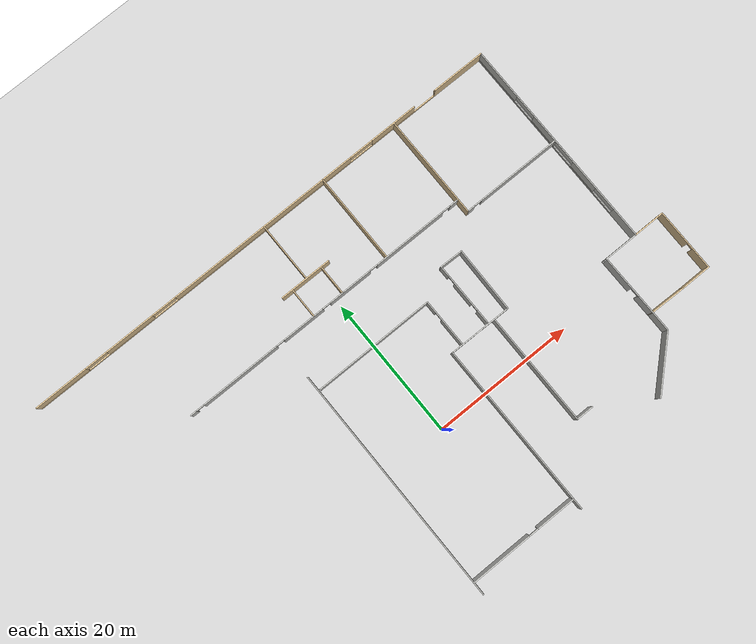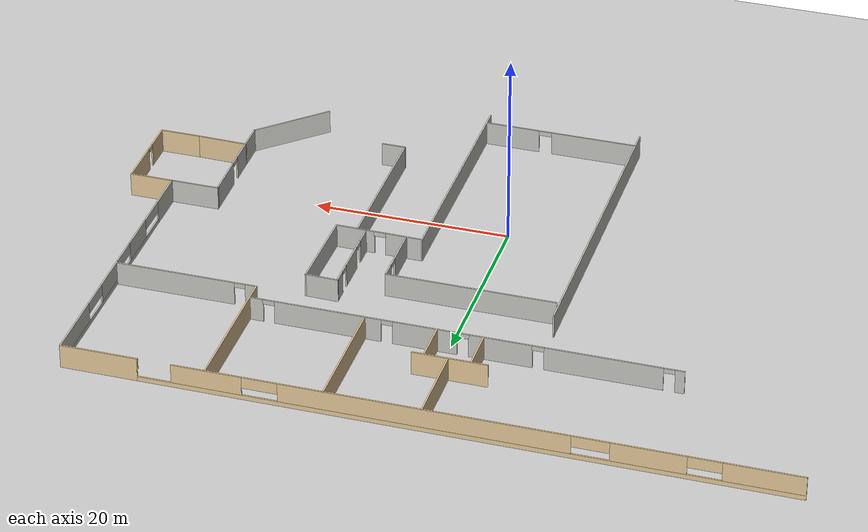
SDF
<sdf version="1.7">
 <world name="default">
  <model name="ground_plane">
   <static>1</static>
   <link name="link">
    <collision name="collision">
     <geometry><plane><normal>0 0 1</normal><size>100 100</size></plane></geometry>
     <surface>
      <contact><collide_bitmask>65535</collide_bitmask></contact>
      <friction><ode><mu>100</mu><mu2>50</mu2></ode></friction>
     </surface>
    </collision>
    <visual name="visual">
     <cast_shadows>0</cast_shadows>
     <geometry><plane><normal>0 0 1</normal><size>100 100</size></plane></geometry>
     <material>
      <script><uri>file://media/materials/scripts/gazebo.material</uri><name>Gazebo/Grey</name></script>
     </material>
    </visual>
   </link>
  </model>
  <model name="Building">
   <pose>0.746899 -1.50406 0 0 -0 1.57073</pose>
   <link name="Wall_100">
    <pose>12.7391 -11.9796 0 0 -0 3.14159</pose>
    <visual name="Wall_100_Visual_0">
     <pose>-3.75183 0 1.25 0 -0 0</pose>
     <geometry><box><size>1.54633 0.15 2.5</size></box></geometry>
     <material>
      <script><uri>file://media/materials/scripts/gazebo.material</uri><name>Gazebo/CeilingTiled</name></script>
      <ambient>1 1 1 1</ambient>
     </material>
     <meta><layer>0</layer></meta>
    </visual>
    <collision name="Wall_100_Collision_0">
     <geometry><box><size>1.54633 0.15 2.5</size></box></geometry>
     <pose>-3.75183 0 1.25 0 -0 0</pose>
    </collision>
    <visual name="Wall_100_Visual_1">
     <pose>-0.201089 0 1.25 0 -0 0</pose>
     <geometry><box><size>3.35516 0.15 2.5</size></box></geometry>
     <material>
      <script><uri>file://media/materials/scripts/gazebo.material</uri><name>Gazebo/CeilingTiled</name></script>
      <ambient>1 1 1 1</ambient>
     </material>
     <meta><layer>0</layer></meta>
    </visual>
    <collision name="Wall_100_Collision_1">
     <geometry><box><size>3.35516 0.15 2.5</size></box></geometry>
     <pose>-0.201089 0 1.25 0 -0 0</pose>
    </collision>
    <visual name="Wall_100_Visual_2">
     <pose>3.55075 0 1.25 0 -0 0</pose>
     <geometry><box><size>1.94851 0.15 2.5</size></box></geometry>
     <material>
      <script><uri>file://media/materials/scripts/gazebo.material</uri><name>Gazebo/CeilingTiled</name></script>
      <ambient>1 1 1 1</ambient>
     </material>
     <meta><layer>0</layer></meta>
    </visual>
    <collision name="Wall_100_Collision_2">
     <geometry><box><size>1.94851 0.15 2.5</size></box></geometry>
     <pose>3.55075 0 1.25 0 -0 0</pose>
    </collision>
    <visual name="Wall_100_Visual_3">
     <pose>-2.42867 0 2.25 0 -0 0</pose>
     <geometry><box><size>1.3 0.15 0.5</size></box></geometry>
     <material>
      <script><uri>file://media/materials/scripts/gazebo.material</uri><name>Gazebo/CeilingTiled</name></script>
      <ambient>1 1 1 1</ambient>
     </material>
     <meta><layer>0</layer></meta>
    </visual>
    <collision name="Wall_100_Collision_3">
     <geometry><box><size>1.3 0.15 0.5</size></box></geometry>
     <pose>-2.42867 0 2.25 0 -0 0</pose>
    </collision>
    <visual name="Wall_100_Visual_4">
     <pose>2.02649 0 2.25 0 -0 0</pose>
     <geometry><box><size>1.3 0.15 0.5</size></box></geometry>
     <material>
      <script><uri>file://media/materials/scripts/gazebo.material</uri><name>Gazebo/CeilingTiled</name></script>
      <ambient>1 1 1 1</ambient>
     </material>
     <meta><layer>0</layer></meta>
    </visual>
    <collision name="Wall_100_Collision_4">
     <geometry><box><size>1.3 0.15 0.5</size></box></geometry>
     <pose>2.02649 0 2.25 0 -0 0</pose>
    </collision>
   </link>
   <link name="Wall_103">
    <collision name="Wall_103_Collision">
     <geometry><box><size>4.25 0.15 2.5</size></box></geometry>
     <pose>0 0 1.25 0 -0 0</pose>
    </collision>
    <visual name="Wall_103_Visual">
     <pose>0 0 1.25 0 -0 0</pose>
     <geometry><box><size>4.25 0.15 2.5</size></box></geometry>
     <material>
      <script><uri>file://media/materials/scripts/gazebo.material</uri><name>Gazebo/Grey</name></script>
      <ambient>0.921569 0.807843 0.615686 1</ambient>
     </material>
     <meta><layer>0</layer></meta>
    </visual>
    <pose>24.6252 4.22124 0 0 -0 0</pose>
   </link>
   <link name="Wall_105">
    <collision name="Wall_105_Collision">
     <geometry><box><size>4.25 0.15 2.5</size></box></geometry>
     <pose>0 0 1.25 0 -0 0</pose>
    </collision>
    <visual name="Wall_105_Visual">
     <pose>0 0 1.25 0 -0 0</pose>
     <geometry><box><size>4.25 0.15 2.5</size></box></geometry>
     <material>
      <script><uri>file://media/materials/scripts/gazebo.material</uri><name>Gazebo/Grey</name></script>
      <ambient>0.921569 0.807843 0.615686 1</ambient>
     </material>
     <meta><layer>0</layer></meta>
    </visual>
    <pose>24.6252 -0.368503 0 0 -0 0</pose>
   </link>
   <link name="Wall_107">
    <collision name="Wall_107_Collision">
     <geometry><box><size>7.5 0.15 2.5</size></box></geometry>
     <pose>0 0 1.25 0 -0 0</pose>
    </collision>
    <visual name="Wall_107_Visual">
     <pose>0 0 1.25 0 -0 0</pose>
     <geometry><box><size>7.5 0.15 2.5</size></box></geometry>
     <material>
      <script><uri>file://media/materials/scripts/gazebo.material</uri><name>Gazebo/Grey</name></script>
      <ambient>0.921569 0.807843 0.615686 1</ambient>
     </material>
     <meta><layer>0</layer></meta>
    </visual>
    <pose>26.8012 2.14732 0 0 0 -1.5708</pose>
   </link>
   <link name="Wall_109">
    <collision name="Wall_109_Collision">
     <geometry><box><size>8.5 0.15 2.5</size></box></geometry>
     <pose>0 0 1.25 0 -0 0</pose>
    </collision>
    <visual name="Wall_109_Visual">
     <pose>0 0 1.25 0 -0 0</pose>
     <geometry><box><size>8.5 0.15 2.5</size></box></geometry>
     <material>
      <script><uri>file://media/materials/scripts/gazebo.material</uri><name>Gazebo/Grey</name></script>
      <ambient>0.921569 0.807843 0.615686 1</ambient>
     </material>
     <meta><layer>0</layer></meta>
    </visual>
    <pose>31.0591 1.97974 0 0 -0 0</pose>
   </link>
   <link name="Wall_11">
    <collision name="Wall_11_Collision">
     <geometry><box><size>4.25 0.15 2.5</size></box></geometry>
     <pose>0 0 1.25 0 -0 0</pose>
    </collision>
    <visual name="Wall_11_Visual">
     <pose>0 0 1.25 0 -0 0</pose>
     <geometry><box><size>4.25 0.15 2.5</size></box></geometry>
     <material>
      <script><uri>file://media/materials/scripts/gazebo.material</uri><name>Gazebo/Grey</name></script>
      <ambient>0.921569 0.807843 0.615686 1</ambient>
     </material>
     <meta><layer>0</layer></meta>
    </visual>
    <pose>-3.9045 -35.8 0 0 0 -1.5708</pose>
   </link>
   <link name="Wall_12">
    <pose>0.520502 -37.85 0 0 -0 0</pose>
    <visual name="Wall_12_Visual_0">
     <pose>-2.96768 0 1.25 0 -0 0</pose>
     <geometry><box><size>3.06464 0.15 2.5</size></box></geometry>
     <material>
      <script><uri>file://media/materials/scripts/gazebo.material</uri><name>Gazebo/Grey</name></script>
      <ambient>0.921569 0.807843 0.615686 1</ambient>
     </material>
     <meta><layer>0</layer></meta>
    </visual>
    <collision name="Wall_12_Collision_0">
     <geometry><box><size>3.06464 0.15 2.5</size></box></geometry>
     <pose>-2.96768 0 1.25 0 -0 0</pose>
    </collision>
    <visual name="Wall_12_Visual_1">
     <pose>1.98232 0 1.25 0 -0 0</pose>
     <geometry><box><size>5.03536 0.15 2.5</size></box></geometry>
     <material>
      <script><uri>file://media/materials/scripts/gazebo.material</uri><name>Gazebo/Grey</name></script>
      <ambient>0.921569 0.807843 0.615686 1</ambient>
     </material>
     <meta><layer>0</layer></meta>
    </visual>
    <collision name="Wall_12_Collision_1">
     <geometry><box><size>5.03536 0.15 2.5</size></box></geometry>
     <pose>1.98232 0 1.25 0 -0 0</pose>
    </collision>
    <visual name="Wall_12_Visual_2">
     <pose>-0.985361 0 2.25 0 -0 0</pose>
     <geometry><box><size>0.9 0.15 0.5</size></box></geometry>
     <material>
      <script><uri>file://media/materials/scripts/gazebo.material</uri><name>Gazebo/Grey</name></script>
      <ambient>0.921569 0.807843 0.615686 1</ambient>
     </material>
     <meta><layer>0</layer></meta>
    </visual>
    <collision name="Wall_12_Collision_2">
     <geometry><box><size>0.9 0.15 0.5</size></box></geometry>
     <pose>-0.985361 0 2.25 0 -0 0</pose>
    </collision>
   </link>
   <link name="Wall_13">
    <collision name="Wall_13_Collision">
     <geometry><box><size>4.5 0.15 2.5</size></box></geometry>
     <pose>0 0 1.25 0 -0 0</pose>
    </collision>
    <visual name="Wall_13_Visual">
     <pose>0 0 1.25 0 -0 0</pose>
     <geometry><box><size>4.5 0.15 2.5</size></box></geometry>
     <material>
      <script><uri>file://media/materials/scripts/gazebo.material</uri><name>Gazebo/Grey</name></script>
      <ambient>0.921569 0.807843 0.615686 1</ambient>
     </material>
     <meta><layer>0</layer></meta>
    </visual>
    <pose>4.9455 -35.675 0 0 -0 1.5708</pose>
   </link>
   <link name="Wall_14">
    <pose>20.1205 -33.5 0 0 -0 0</pose>
    <visual name="Wall_14_Visual_0">
     <pose>-13.0855 0 1.25 0 -0 0</pose>
     <geometry><box><size>4.3291 0.15 2.5</size></box></geometry>
     <material>
      <script><uri>file://media/materials/scripts/gazebo.material</uri><name>Gazebo/CeilingTiled</name></script>
      <ambient>0.921569 0.807843 0.615686 1</ambient>
     </material>
     <meta><layer>0</layer></meta>
    </visual>
    <collision name="Wall_14_Collision_0">
     <geometry><box><size>4.3291 0.15 2.5</size></box></geometry>
     <pose>-13.0855 0 1.25 0 -0 0</pose>
    </collision>
    <visual name="Wall_14_Visual_1">
     <pose>2.16455 0 0.25 0 -0 0</pose>
     <geometry><box><size>26.1709 0.15 0.5</size></box></geometry>
     <material>
      <script><uri>file://media/materials/scripts/gazebo.material</uri><name>Gazebo/CeilingTiled</name></script>
      <ambient>0.921569 0.807843 0.615686 1</ambient>
     </material>
     <meta><layer>0</layer></meta>
    </visual>
    <collision name="Wall_14_Collision_1">
     <geometry><box><size>26.1709 0.15 0.5</size></box></geometry>
     <pose>2.16455 0 0.25 0 -0 0</pose>
    </collision>
    <visual name="Wall_14_Visual_2">
     <pose>-5.28013 0 1.5 0 -0 0</pose>
     <geometry><box><size>4.37212 0.15 2</size></box></geometry>
     <material>
      <script><uri>file://media/materials/scripts/gazebo.material</uri><name>Gazebo/CeilingTiled</name></script>
      <ambient>0.921569 0.807843 0.615686 1</ambient>
     </material>
     <meta><layer>0</layer></meta>
    </visual>
    <collision name="Wall_14_Collision_2">
     <geometry><box><size>4.37212 0.15 2</size></box></geometry>
     <pose>-5.28013 0 1.5 0 -0 0</pose>
    </collision>
    <visual name="Wall_14_Visual_3">
     <pose>2.38651 0 1.5 0 -0 0</pose>
     <geometry><box><size>4.32635 0.15 2</size></box></geometry>
     <material>
      <script><uri>file://media/materials/scripts/gazebo.material</uri><name>Gazebo/CeilingTiled</name></script>
      <ambient>0.921569 0.807843 0.615686 1</ambient>
     </material>
     <meta><layer>0</layer></meta>
    </visual>
    <collision name="Wall_14_Collision_3">
     <geometry><box><size>4.32635 0.15 2</size></box></geometry>
     <pose>2.38651 0 1.5 0 -0 0</pose>
    </collision>
    <visual name="Wall_14_Visual_4">
     <pose>11.5814 0 1.5 0 -0 0</pose>
     <geometry><box><size>7.33714 0.15 2</size></box></geometry>
     <material>
      <script><uri>file://media/materials/scripts/gazebo.material</uri><name>Gazebo/CeilingTiled</name></script>
      <ambient>0.921569 0.807843 0.615686 1</ambient>
     </material>
     <meta><layer>0</layer></meta>
    </visual>
    <collision name="Wall_14_Collision_4">
     <geometry><box><size>7.33714 0.15 2</size></box></geometry>
     <pose>11.5814 0 1.5 0 -0 0</pose>
    </collision>
    <visual name="Wall_14_Visual_5">
     <pose>-9.19355 0 1.9 0 -0 0</pose>
     <geometry><box><size>3.45472 0.15 1.2</size></box></geometry>
     <material>
      <script><uri>file://media/materials/scripts/gazebo.material</uri><name>Gazebo/CeilingTiled</name></script>
      <ambient>0.921569 0.807843 0.615686 1</ambient>
     </material>
     <meta><layer>0</layer></meta>
    </visual>
    <collision name="Wall_14_Collision_5">
     <geometry><box><size>3.45472 0.15 1.2</size></box></geometry>
     <pose>-9.19355 0 1.9 0 -0 0</pose>
    </collision>
    <visual name="Wall_14_Visual_6">
     <pose>-1.43537 0 1.9 0 -0 0</pose>
     <geometry><box><size>3.3174 0.15 1.2</size></box></geometry>
     <material>
      <script><uri>file://media/materials/scripts/gazebo.material</uri><name>Gazebo/CeilingTiled</name></script>
      <ambient>0.921569 0.807843 0.615686 1</ambient>
     </material>
     <meta><layer>0</layer></meta>
    </visual>
    <collision name="Wall_14_Collision_6">
     <geometry><box><size>3.3174 0.15 1.2</size></box></geometry>
     <pose>-1.43537 0 1.9 0 -0 0</pose>
    </collision>
    <visual name="Wall_14_Visual_7">
     <pose>6.23127 0 1.9 0 -0 0</pose>
     <geometry><box><size>3.36317 0.15 1.2</size></box></geometry>
     <material>
      <script><uri>file://media/materials/scripts/gazebo.material</uri><name>Gazebo/CeilingTiled</name></script>
      <ambient>0.921569 0.807843 0.615686 1</ambient>
     </material>
     <meta><layer>0</layer></meta>
    </visual>
    <collision name="Wall_14_Collision_7">
     <geometry><box><size>3.36317 0.15 1.2</size></box></geometry>
     <pose>6.23127 0 1.9 0 -0 0</pose>
    </collision>
   </link>
   <link name="Wall_15">
    <pose>35.2955 2.175 0 0 -0 1.5708</pose>
    <visual name="Wall_15_Visual_0">
     <pose>-31.881 0 1.25 0 -0 0</pose>
     <geometry><box><size>7.73799 0.15 2.5</size></box></geometry>
     <material>
      <script><uri>file://media/materials/scripts/gazebo.material</uri><name>Gazebo/Grey</name></script>
      <ambient>0.921569 0.807843 0.615686 1</ambient>
     </material>
     <meta><layer>0</layer></meta>
    </visual>
    <collision name="Wall_15_Collision_0">
     <geometry><box><size>7.73799 0.15 2.5</size></box></geometry>
     <pose>-31.881 0 1.25 0 -0 0</pose>
    </collision>
    <visual name="Wall_15_Visual_1">
     <pose>3.869 0 0.25 0 -0 0</pose>
     <geometry><box><size>63.762 0.15 0.5</size></box></geometry>
     <material>
      <script><uri>file://media/materials/scripts/gazebo.material</uri><name>Gazebo/Grey</name></script>
      <ambient>0.921569 0.807843 0.615686 1</ambient>
     </material>
     <meta><layer>0</layer></meta>
    </visual>
    <collision name="Wall_15_Collision_1">
     <geometry><box><size>63.762 0.15 0.5</size></box></geometry>
     <pose>3.869 0 0.25 0 -0 0</pose>
    </collision>
    <visual name="Wall_15_Visual_2">
     <pose>-21.1676 0 1.5 0 -0 0</pose>
     <geometry><box><size>6.97218 0.15 2</size></box></geometry>
     <material>
      <script><uri>file://media/materials/scripts/gazebo.material</uri><name>Gazebo/Grey</name></script>
      <ambient>0.921569 0.807843 0.615686 1</ambient>
     </material>
     <meta><layer>0</layer></meta>
    </visual>
    <collision name="Wall_15_Collision_2">
     <geometry><box><size>6.97218 0.15 2</size></box></geometry>
     <pose>-21.1676 0 1.5 0 -0 0</pose>
    </collision>
    <visual name="Wall_15_Visual_3">
     <pose>-0.106032 0 1.5 0 -0 0</pose>
     <geometry><box><size>28.1209 0.15 2</size></box></geometry>
     <material>
      <script><uri>file://media/materials/scripts/gazebo.material</uri><name>Gazebo/Grey</name></script>
      <ambient>0.921569 0.807843 0.615686 1</ambient>
     </material>
     <meta><layer>0</layer></meta>
    </visual>
    <collision name="Wall_15_Collision_3">
     <geometry><box><size>28.1209 0.15 2</size></box></geometry>
     <pose>-0.106032 0 1.5 0 -0 0</pose>
    </collision>
    <visual name="Wall_15_Visual_4">
     <pose>21.1713 0 1.5 0 -0 0</pose>
     <geometry><box><size>7.19064 0.15 2</size></box></geometry>
     <material>
      <script><uri>file://media/materials/scripts/gazebo.material</uri><name>Gazebo/Grey</name></script>
      <ambient>0.921569 0.807843 0.615686 1</ambient>
     </material>
     <meta><layer>0</layer></meta>
    </visual>
    <collision name="Wall_15_Collision_4">
     <geometry><box><size>7.19064 0.15 2</size></box></geometry>
     <pose>21.1713 0 1.5 0 -0 0</pose>
    </collision>
    <visual name="Wall_15_Visual_5">
     <pose>31.8827 0 1.5 0 -0 0</pose>
     <geometry><box><size>7.73457 0.15 2</size></box></geometry>
     <material>
      <script><uri>file://media/materials/scripts/gazebo.material</uri><name>Gazebo/Grey</name></script>
      <ambient>0.921569 0.807843 0.615686 1</ambient>
     </material>
     <meta><layer>0</layer></meta>
    </visual>
    <collision name="Wall_15_Collision_5">
     <geometry><box><size>7.73457 0.15 2</size></box></geometry>
     <pose>31.8827 0 1.5 0 -0 0</pose>
    </collision>
    <visual name="Wall_15_Visual_6">
     <pose>-27.9687 0 1.9 0 -0 0</pose>
     <geometry><box><size>0.086667 0.15 1.2</size></box></geometry>
     <material>
      <script><uri>file://media/materials/scripts/gazebo.material</uri><name>Gazebo/Grey</name></script>
      <ambient>0.921569 0.807843 0.615686 1</ambient>
     </material>
     <meta><layer>0</layer></meta>
    </visual>
    <collision name="Wall_15_Collision_6">
     <geometry><box><size>0.086667 0.15 1.2</size></box></geometry>
     <pose>-27.9687 0 1.9 0 -0 0</pose>
    </collision>
    <visual name="Wall_15_Visual_7">
     <pose>-15.924 0 1.9 0 -0 0</pose>
     <geometry><box><size>3.51504 0.15 1.2</size></box></geometry>
     <material>
      <script><uri>file://media/materials/scripts/gazebo.material</uri><name>Gazebo/Grey</name></script>
      <ambient>0.921569 0.807843 0.615686 1</ambient>
     </material>
     <meta><layer>0</layer></meta>
    </visual>
    <collision name="Wall_15_Collision_7">
     <geometry><box><size>3.51504 0.15 1.2</size></box></geometry>
     <pose>-15.924 0 1.9 0 -0 0</pose>
    </collision>
    <visual name="Wall_15_Visual_8">
     <pose>15.7652 0 1.9 0 -0 0</pose>
     <geometry><box><size>3.62151 0.15 1.2</size></box></geometry>
     <material>
      <script><uri>file://media/materials/scripts/gazebo.material</uri><name>Gazebo/Grey</name></script>
      <ambient>0.921569 0.807843 0.615686 1</ambient>
     </material>
     <meta><layer>0</layer></meta>
    </visual>
    <collision name="Wall_15_Collision_8">
     <geometry><box><size>3.62151 0.15 1.2</size></box></geometry>
     <pose>15.7652 0 1.9 0 -0 0</pose>
    </collision>
    <visual name="Wall_15_Visual_9">
     <pose>26.391 0 1.9 0 -0 0</pose>
     <geometry><box><size>3.24886 0.15 1.2</size></box></geometry>
     <material>
      <script><uri>file://media/materials/scripts/gazebo.material</uri><name>Gazebo/Grey</name></script>
      <ambient>0.921569 0.807843 0.615686 1</ambient>
     </material>
     <meta><layer>0</layer></meta>
    </visual>
    <collision name="Wall_15_Collision_9">
     <geometry><box><size>3.24886 0.15 1.2</size></box></geometry>
     <pose>26.391 0 1.9 0 -0 0</pose>
    </collision>
   </link>
   <link name="Wall_181">
    <pose>8.05273 -10.6417 0 0 -0 1.55946</pose>
    <visual name="Wall_181_Visual_0">
     <pose>-2.4226 0 1.25 0 -0 0</pose>
     <geometry><box><size>3.9635 0.15 2.5</size></box></geometry>
     <material>
      <script><uri>file://media/materials/scripts/gazebo.material</uri><name>Gazebo/CeilingTiled</name></script>
      <ambient>1 1 1 1</ambient>
     </material>
     <meta><layer>0</layer></meta>
    </visual>
    <collision name="Wall_181_Collision_0">
     <geometry><box><size>4.1635 0.15 2.5</size></box></geometry>
     <pose>-2.4226 0 1.25 0 -0 0</pose>
    </collision>
    <visual name="Wall_181_Visual_1">
     <pose>2.53175 0 1.25 0 -0 0</pose>
     <geometry><box><size>3.74519 0.15 2.5</size></box></geometry>
     <material>
      <script><uri>file://media/materials/scripts/gazebo.material</uri><name>Gazebo/CeilingTiled</name></script>
      <ambient>1 1 1 1</ambient>
     </material>
     <meta><layer>0</layer></meta>
    </visual>
    <collision name="Wall_181_Collision_1">
     <geometry><box><size>3.94519 0.15 2.5</size></box></geometry>
     <pose>2.53175 0 1.25 0 -0 0</pose>
    </collision>
    <visual name="Wall_181_Visual_2">
     <pose>0.109156 0 2.25 0 -0 0</pose>
     <geometry><box><size>1.3 0.15 0.5</size></box></geometry>
     <material>
      <script><uri>file://media/materials/scripts/gazebo.material</uri><name>Gazebo/CeilingTiled</name></script>
      <ambient>1 1 1 1</ambient>
     </material>
     <meta><layer>0</layer></meta>
    </visual>
    <collision name="Wall_181_Collision_2">
     <geometry><box><size>0.9 0.15 0.5</size></box></geometry>
     <pose>0.109156 0 2.25 0 -0 0</pose>
    </collision>
   </link>
   <link name="Wall_38">
    <pose>22.5366 2.32134 0 0 0 -1.5708</pose>
    <visual name="Wall_38_Visual_0">
     <pose>-20.9301 0 1.25 0 -0 0</pose>
     <geometry><box><size>0.93983 0.15 2.5</size></box></geometry>
     <material>
      <script><uri>file://media/materials/scripts/gazebo.material</uri><name>Gazebo/CeilingTiled</name></script>
      <ambient>1 1 1 1</ambient>
     </material>
     <meta><layer>0</layer></meta>
    </visual>
    <collision name="Wall_38_Collision_0">
     <geometry><box><size>0.93983 0.15 2.5</size></box></geometry>
     <pose>-20.9301 0 1.25 0 -0 0</pose>
    </collision>
    <visual name="Wall_38_Visual_1">
     <pose>-13.5855 0 1.25 0 -0 0</pose>
     <geometry><box><size>11.5493 0.15 2.5</size></box></geometry>
     <material>
      <script><uri>file://media/materials/scripts/gazebo.material</uri><name>Gazebo/CeilingTiled</name></script>
      <ambient>1 1 1 1</ambient>
     </material>
     <meta><layer>0</layer></meta>
    </visual>
    <collision name="Wall_38_Collision_1">
     <geometry><box><size>11.5493 0.15 2.5</size></box></geometry>
     <pose>-13.5855 0 1.25 0 -0 0</pose>
    </collision>
    <visual name="Wall_38_Visual_2">
     <pose>-3.55683 0 1.25 0 -0 0</pose>
     <geometry><box><size>6.30816 0.15 2.5</size></box></geometry>
     <material>
      <script><uri>file://media/materials/scripts/gazebo.material</uri><name>Gazebo/CeilingTiled</name></script>
      <ambient>1 1 1 1</ambient>
     </material>
     <meta><layer>0</layer></meta>
    </visual>
    <collision name="Wall_38_Collision_2">
     <geometry><box><size>6.30816 0.15 2.5</size></box></geometry>
     <pose>-3.55683 0 1.25 0 -0 0</pose>
    </collision>
    <visual name="Wall_38_Visual_3">
     <pose>3.90501 0 1.25 0 -0 0</pose>
     <geometry><box><size>6.41553 0.15 2.5</size></box></geometry>
     <material>
      <script><uri>file://media/materials/scripts/gazebo.material</uri><name>Gazebo/CeilingTiled</name></script>
      <ambient>1 1 1 1</ambient>
     </material>
     <meta><layer>0</layer></meta>
    </visual>
    <collision name="Wall_38_Collision_3">
     <geometry><box><size>6.41553 0.15 2.5</size></box></geometry>
     <pose>3.90501 0 1.25 0 -0 0</pose>
    </collision>
    <visual name="Wall_38_Visual_4">
     <pose>13.5678 0 1.25 0 -0 0</pose>
     <geometry><box><size>10.7101 0.15 2.5</size></box></geometry>
     <material>
      <script><uri>file://media/materials/scripts/gazebo.material</uri><name>Gazebo/CeilingTiled</name></script>
      <ambient>1 1 1 1</ambient>
     </material>
     <meta><layer>0</layer></meta>
    </visual>
    <collision name="Wall_38_Collision_4">
     <geometry><box><size>10.7101 0.15 2.5</size></box></geometry>
     <pose>13.5678 0 1.25 0 -0 0</pose>
    </collision>
    <visual name="Wall_38_Visual_5">
     <pose>20.7114 0 1.25 0 -0 0</pose>
     <geometry><box><size>1.37711 0.15 2.5</size></box></geometry>
     <material>
      <script><uri>file://media/materials/scripts/gazebo.material</uri><name>Gazebo/CeilingTiled</name></script>
      <ambient>1 1 1 1</ambient>
     </material>
     <meta><layer>0</layer></meta>
    </visual>
    <collision name="Wall_38_Collision_5">
     <geometry><box><size>1.37711 0.15 2.5</size></box></geometry>
     <pose>20.7114 0 1.25 0 -0 0</pose>
    </collision>
    <visual name="Wall_38_Visual_6">
     <pose>-19.9102 0 2.25 0 -0 0</pose>
     <geometry><box><size>1.3 0.15 0.5</size></box></geometry>
     <material>
      <script><uri>file://media/materials/scripts/gazebo.material</uri><name>Gazebo/CeilingTiled</name></script>
      <ambient>1 1 1 1</ambient>
     </material>
     <meta><layer>0</layer></meta>
    </visual>
    <collision name="Wall_38_Collision_6">
     <geometry><box><size>1.3 0.15 0.5</size></box></geometry>
     <pose>-19.9102 0 2.25 0 -0 0</pose>
    </collision>
    <visual name="Wall_38_Visual_7">
     <pose>-7.26091 0 2.25 0 -0 0</pose>
     <geometry><box><size>1.3 0.15 0.5</size></box></geometry>
     <material>
      <script><uri>file://media/materials/scripts/gazebo.material</uri><name>Gazebo/CeilingTiled</name></script>
      <ambient>1 1 1 1</ambient>
     </material>
     <meta><layer>0</layer></meta>
    </visual>
    <collision name="Wall_38_Collision_7">
     <geometry><box><size>1.3 0.15 0.5</size></box></geometry>
     <pose>-7.26091 0 2.25 0 -0 0</pose>
    </collision>
    <visual name="Wall_38_Visual_8">
     <pose>0.14725 0 2.25 0 -0 0</pose>
     <geometry><box><size>1.3 0.15 0.5</size></box></geometry>
     <material>
      <script><uri>file://media/materials/scripts/gazebo.material</uri><name>Gazebo/CeilingTiled</name></script>
      <ambient>1 1 1 1</ambient>
     </material>
     <meta><layer>0</layer></meta>
    </visual>
    <collision name="Wall_38_Collision_8">
     <geometry><box><size>1.3 0.15 0.5</size></box></geometry>
     <pose>0.14725 0 2.25 0 -0 0</pose>
    </collision>
    <visual name="Wall_38_Visual_9">
     <pose>7.66278 0 2.25 0 -0 0</pose>
     <geometry><box><size>1.3 0.15 0.5</size></box></geometry>
     <material>
      <script><uri>file://media/materials/scripts/gazebo.material</uri><name>Gazebo/CeilingTiled</name></script>
      <ambient>1 1 1 1</ambient>
     </material>
     <meta><layer>0</layer></meta>
    </visual>
    <collision name="Wall_38_Collision_9">
     <geometry><box><size>1.3 0.15 0.5</size></box></geometry>
     <pose>7.66278 0 2.25 0 -0 0</pose>
    </collision>
    <visual name="Wall_38_Visual_10">
     <pose>19.4729 0 2.25 0 -0 0</pose>
     <geometry><box><size>1.3 0.15 0.5</size></box></geometry>
     <material>
      <script><uri>file://media/materials/scripts/gazebo.material</uri><name>Gazebo/CeilingTiled</name></script>
      <ambient>1 1 1 1</ambient>
     </material>
     <meta><layer>0</layer></meta>
    </visual>
    <collision name="Wall_38_Collision_10">
     <geometry><box><size>1.3 0.15 0.5</size></box></geometry>
     <pose>19.4729 0 2.25 0 -0 0</pose>
    </collision>
   </link>
   <link name="Wall_42">
    <collision name="Wall_42_Collision">
     <geometry><box><size>12.75 0.15 2.5</size></box></geometry>
     <pose>0 0 1.25 0 -0 0</pose>
    </collision>
    <visual name="Wall_42_Visual">
     <pose>0 0 1.25 0 -0 0</pose>
     <geometry><box><size>12.75 0.15 2.5</size></box></geometry>
     <material>
      <script><uri>file://media/materials/scripts/gazebo.material</uri><name>Gazebo/Grey</name></script>
      <ambient>0.921569 0.807843 0.615686 1</ambient>
     </material>
     <meta><layer>0</layer></meta>
    </visual>
    <pose>28.9541 -7.52341 0 0 -0 0</pose>
   </link>
   <link name="Wall_44">
    <collision name="Wall_44_Collision">
     <geometry><box><size>14.75 0.15 2.5</size></box></geometry>
     <pose>0 0 1.25 0 -0 0</pose>
    </collision>
    <visual name="Wall_44_Visual">
     <pose>0 0 1.25 0 -0 0</pose>
     <geometry><box><size>14.75 0.15 2.5</size></box></geometry>
     <material>
      <script><uri>file://media/materials/scripts/gazebo.material</uri><name>Gazebo/Grey</name></script>
      <ambient>0.921569 0.807843 0.615686 1</ambient>
     </material>
     <meta><layer>0</layer></meta>
    </visual>
    <pose>27.8973 -19.1114 0 0 -0 0</pose>
   </link>
   <link name="Wall_46">
    <pose>20.5973 -26.2864 0 0 0 -1.5708</pose>
    <visual name="Wall_46_Visual_0">
     <pose>-6.60084 0 1.25 0 -0 0</pose>
     <geometry><box><size>1.09831 0.15 2.5</size></box></geometry>
     <material>
      <script><uri>file://media/materials/scripts/gazebo.material</uri><name>Gazebo/CeilingTiled</name></script>
      <ambient>1 1 1 1</ambient>
     </material>
     <meta><layer>0</layer></meta>
    </visual>
    <collision name="Wall_46_Collision_0">
     <geometry><box><size>1.09831 0.15 2.5</size></box></geometry>
     <pose>-6.60084 0 1.25 0 -0 0</pose>
    </collision>
    <visual name="Wall_46_Visual_1">
     <pose>1.09916 0 1.25 0 -0 0</pose>
     <geometry><box><size>12.1017 0.15 2.5</size></box></geometry>
     <material>
      <script><uri>file://media/materials/scripts/gazebo.material</uri><name>Gazebo/CeilingTiled</name></script>
      <ambient>1 1 1 1</ambient>
     </material>
     <meta><layer>0</layer></meta>
    </visual>
    <collision name="Wall_46_Collision_1">
     <geometry><box><size>12.1017 0.15 2.5</size></box></geometry>
     <pose>1.09916 0 1.25 0 -0 0</pose>
    </collision>
    <visual name="Wall_46_Visual_2">
     <pose>-5.50169 0 2.25 0 -0 0</pose>
     <geometry><box><size>1.3 0.15 0.5</size></box></geometry>
     <material>
      <script><uri>file://media/materials/scripts/gazebo.material</uri><name>Gazebo/CeilingTiled</name></script>
      <ambient>1 1 1 1</ambient>
     </material>
     <meta><layer>0</layer></meta>
    </visual>
    <collision name="Wall_46_Collision_2">
     <geometry><box><size>1.3 0.15 0.5</size></box></geometry>
     <pose>-5.50169 0 2.25 0 -0 0</pose>
    </collision>
   </link>
   <link name="Wall_61">
    <collision name="Wall_61_Collision">
     <geometry><box><size>8.62706 0.15 2.5</size></box></geometry>
     <pose>0 0 1.25 0 -0 0</pose>
    </collision>
    <visual name="Wall_61_Visual">
     <pose>0 0 1.25 0 -0 0</pose>
     <geometry><box><size>8.62706 0.15 2.5</size></box></geometry>
     <material>
      <script><uri>file://media/materials/scripts/gazebo.material</uri><name>Gazebo/CeilingTiled</name></script>
      <ambient>1 1 1 1</ambient>
     </material>
     <meta><layer>0</layer></meta>
    </visual>
    <pose>-9.5277 -25.6162 0 0 0 -0.820597</pose>
   </link>
   <link name="Wall_62">
    <collision name="Wall_62_Collision">
     <geometry><box><size>3 0.15 2.5</size></box></geometry>
     <pose>0 0 1.25 0 -0 0</pose>
    </collision>
    <visual name="Wall_62_Visual">
     <pose>0 0 1.25 0 -0 0</pose>
     <geometry><box><size>3 0.15 2.5</size></box></geometry>
     <material>
      <script><uri>file://media/materials/scripts/gazebo.material</uri><name>Gazebo/CeilingTiled</name></script>
      <ambient>1 1 1 1</ambient>
     </material>
     <meta><layer>0</layer></meta>
    </visual>
    <pose>-5.21294 -28.7169 0 0 -0 0</pose>
   </link>
   <link name="Wall_63">
    <collision name="Wall_63_Collision">
     <geometry><box><size>5.18443 0.15 2.5</size></box></geometry>
     <pose>0 0 1.25 0 -0 0</pose>
    </collision>
    <visual name="Wall_63_Visual">
     <pose>0 0 1.25 0 -0 0</pose>
     <geometry><box><size>5.18443 0.15 2.5</size></box></geometry>
     <material>
      <script><uri>file://media/materials/scripts/gazebo.material</uri><name>Gazebo/Grey</name></script>
      <ambient>0.921569 0.807843 0.615686 1</ambient>
     </material>
     <meta><layer>0</layer></meta>
    </visual>
    <pose>-3.84622 -31.2335 0 0 0 -1.59395</pose>
   </link>
   <link name="Wall_68">
    <collision name="Wall_68_Collision">
     <geometry><box><size>5 0.15 2.5</size></box></geometry>
     <pose>0 0 1.25 0 -0 0</pose>
    </collision>
    <visual name="Wall_68_Visual">
     <pose>0 0 1.25 0 -0 0</pose>
     <geometry><box><size>5 0.15 2.5</size></box></geometry>
     <material>
      <script><uri>file://media/materials/scripts/gazebo.material</uri><name>Gazebo/CeilingTiled</name></script>
      <ambient>0.921569 0.807843 0.615686 1</ambient>
     </material>
     <meta><layer>0</layer></meta>
    </visual>
    <pose>4.9455 -31.075 0 0 -0 1.5708</pose>
   </link>
   <link name="Wall_70">
    <pose>0.51206 -28.6767 0 0 -0 0.009362</pose>
    <visual name="Wall_70_Visual_0">
     <pose>-2.93111 0 1.25 0 -0 0</pose>
     <geometry><box><size>2.68816 0.15 2.5</size></box></geometry>
     <material>
      <script><uri>file://media/materials/scripts/gazebo.material</uri><name>Gazebo/CeilingTiled</name></script>
      <ambient>1 1 1 1</ambient>
     </material>
     <meta><layer>0</layer></meta>
    </visual>
    <collision name="Wall_70_Collision_0">
     <geometry><box><size>2.68816 0.15 2.5</size></box></geometry>
     <pose>-2.93111 0 1.25 0 -0 0</pose>
    </collision>
    <visual name="Wall_70_Visual_1">
     <pose>1.94408 0 1.25 0 -0 0</pose>
     <geometry><box><size>4.66222 0.15 2.5</size></box></geometry>
     <material>
      <script><uri>file://media/materials/scripts/gazebo.material</uri><name>Gazebo/CeilingTiled</name></script>
      <ambient>1 1 1 1</ambient>
     </material>
     <meta><layer>0</layer></meta>
    </visual>
    <collision name="Wall_70_Collision_1">
     <geometry><box><size>4.66222 0.15 2.5</size></box></geometry>
     <pose>1.94408 0 1.25 0 -0 0</pose>
    </collision>
    <visual name="Wall_70_Visual_2">
     <pose>-0.987029 0 2.25 0 -0 0</pose>
     <geometry><box><size>1.4 0.15 0.5</size></box></geometry>
     <material>
      <script><uri>file://media/materials/scripts/gazebo.material</uri><name>Gazebo/CeilingTiled</name></script>
      <ambient>1 1 1 1</ambient>
     </material>
     <meta><layer>0</layer></meta>
    </visual>
    <collision name="Wall_70_Collision_2">
     <geometry><box><size>1.4 0.15 0.5</size></box></geometry>
     <pose>-0.987029 0 2.25 0 -0 0</pose>
    </collision>
   </link>
   <link name="Wall_74">
    <collision name="Wall_74_Collision">
     <geometry><box><size>34 0.15 2.5</size></box></geometry>
     <pose>0 0 1.25 0 -0 0</pose>
    </collision>
    <visual name="Wall_74_Visual">
     <pose>0 0 1.25 0 -0 0</pose>
     <geometry><box><size>34 0.15 2.5</size></box></geometry>
     <material>
      <script><uri>file://media/materials/scripts/gazebo.material</uri><name>Gazebo/CeilingTiled</name></script>
      <ambient>1 1 1 1</ambient>
     </material>
     <meta><layer>0</layer></meta>
    </visual>
    <pose>0.148448 9.61368 0 0 -0 3.14159</pose>
   </link>
   <link name="Wall_185">
    <visual name="Wall_185_Visual">
     <pose>-15 5.2 1.25 0 -0 1.5708</pose>
     <geometry><box><size>8.85 0.15 2.5</size></box></geometry>
     <material>
      <script><uri>file://media/materials/scripts/gazebo.material</uri><name>Gazebo/CeilingTiled</name></script>
      <ambient>1 1 1 1</ambient>
     </material>
     <meta><layer>0</layer></meta>
    </visual>
    <collision name="Wall_185_Collision_0">
     <geometry><box><size>8.85 0.15 2.5</size></box></geometry>
     <pose>-15 5.2 1.25 0 -0 1.5708</pose>
    </collision>
   </link>
   <link name="Wall_186">
    <visual name="Wall_186_Visual">
     <pose>-15 -3.4 1.25 0 -0 1.5708</pose>
     <geometry><box><size>5.7 0.15 2.5</size></box></geometry>
     <material>
      <script><uri>file://media/materials/scripts/gazebo.material</uri><name>Gazebo/CeilingTiled</name></script>
      <ambient>1 1 1 1</ambient>
     </material>
     <meta><layer>0</layer></meta>
    </visual>
    <collision name="Wall_186_Collision_0">
     <geometry><box><size>5.7 0.15 2.5</size></box></geometry>
     <pose>-15 -3.4 1.25 0 -0 1.5708</pose>
    </collision>
   </link>
   <link name="Wall_86">
    <visual name="Wall_86_Visual_0">
     <pose>-15 0.15 2.25 0 -0 1.5708</pose>
     <geometry><box><size>1.4 0.15 0.5</size></box></geometry>
     <material>
      <script><uri>file://media/materials/scripts/gazebo.material</uri><name>Gazebo/CeilingTiled</name></script>
      <ambient>1 1 1 1</ambient>
     </material>
     <meta><layer>0</layer></meta>
    </visual>
    <collision name="Wall_86_Collision_0">
     <geometry><box><size>1.4 0.15 0.5</size></box></geometry>
     <pose>-15 0.15 2.25 0 -0 1.5708</pose>
    </collision>
   </link>
   <link name="Wall_87">
    <collision name="Wall_87_Collision">
     <geometry><box><size>17.25 0.15 2.5</size></box></geometry>
     <pose>0 0 1.25 0 -0 0</pose>
    </collision>
    <visual name="Wall_87_Visual">
     <pose>0 0 1.25 0 -0 0</pose>
     <geometry><box><size>17.25 0.15 2.5</size></box></geometry>
     <material>
      <script><uri>file://media/materials/scripts/gazebo.material</uri><name>Gazebo/CeilingTiled</name></script>
      <ambient>1 1 1 1</ambient>
     </material>
     <meta><layer>0</layer></meta>
    </visual>
    <pose>14.953 0.737402 0 0 0 -1.5708</pose>
   </link>
   <link name="Wall_88">
    <pose>11.528 -7.8218 0 0 0 -3.13891</pose>
    <visual name="Wall_88_Visual_0">
     <pose>-2.56309 0 1.25 0 -0 0</pose>
     <geometry><box><size>1.67384 0.15 2.5</size></box></geometry>
     <material>
      <script><uri>file://media/materials/scripts/gazebo.material</uri><name>Gazebo/CeilingTiled</name></script>
      <ambient>1 1 1 1</ambient>
     </material>
     <meta><layer>0</layer></meta>
    </visual>
    <collision name="Wall_88_Collision_0">
     <geometry><box><size>1.67384 0.15 2.5</size></box></geometry>
     <pose>-2.56309 0 1.25 0 -0 0</pose>
    </collision>
    <visual name="Wall_88_Visual_1">
     <pose>1.38692 0 1.25 0 -0 0</pose>
     <geometry><box><size>4.02618 0.15 2.5</size></box></geometry>
     <material>
      <script><uri>file://media/materials/scripts/gazebo.material</uri><name>Gazebo/CeilingTiled</name></script>
      <ambient>1 1 1 1</ambient>
     </material>
     <meta><layer>0</layer></meta>
    </visual>
    <collision name="Wall_88_Collision_1">
     <geometry><box><size>4.02618 0.15 2.5</size></box></geometry>
     <pose>1.38692 0 1.25 0 -0 0</pose>
    </collision>
    <visual name="Wall_88_Visual_2">
     <pose>-1.17617 0 2.25 0 -0 0</pose>
     <geometry><box><size>1.3 0.15 0.5</size></box></geometry>
     <material>
      <script><uri>file://media/materials/scripts/gazebo.material</uri><name>Gazebo/CeilingTiled</name></script>
      <ambient>1 1 1 1</ambient>
     </material>
     <meta><layer>0</layer></meta>
    </visual>
    <collision name="Wall_88_Collision_2">
     <geometry><box><size>1.3 0.15 0.5</size></box></geometry>
     <pose>-1.17617 0 2.25 0 -0 0</pose>
    </collision>
   </link>
   <link name="Wall_90">
    <collision name="Wall_90_Collision">
     <geometry><box><size>24.75 0.15 2.5</size></box></geometry>
     <pose>0 0 1.25 0 -0 0</pose>
    </collision>
    <visual name="Wall_90_Visual">
     <pose>0 0 1.25 0 -0 0</pose>
     <geometry><box><size>24.75 0.15 2.5</size></box></geometry>
     <material>
      <script><uri>file://media/materials/scripts/gazebo.material</uri><name>Gazebo/CeilingTiled</name></script>
      <ambient>1 1 1 1</ambient>
     </material>
     <meta><layer>0</layer></meta>
    </visual>
    <pose>-4.19704 -6.2126 0 0 -0 3.14159</pose>
   </link>
   <link name="Wall_95">
    <collision name="Wall_95_Collision">
     <geometry><box><size>2.5 0.15 2.5</size></box></geometry>
     <pose>0 0 1.25 0 -0 0</pose>
    </collision>
    <visual name="Wall_95_Visual">
     <pose>0 0 1.25 0 -0 0</pose>
     <geometry><box><size>2.5 0.15 2.5</size></box></geometry>
     <material>
      <script><uri>file://media/materials/scripts/gazebo.material</uri><name>Gazebo/CeilingTiled</name></script>
      <ambient>1 1 1 1</ambient>
     </material>
     <meta><layer>0</layer></meta>
    </visual>
    <pose>-7.93507 -14.0579 0 0 -0 1.5708</pose>
   </link>
   <link name="Wall_96">
    <collision name="Wall_96_Collision">
     <geometry><box><size>16 0.15 2.5</size></box></geometry>
     <pose>0 0 1.25 0 -0 0</pose>
    </collision>
    <visual name="Wall_96_Visual">
     <pose>0 0 1.25 0 -0 0</pose>
     <geometry><box><size>16 0.15 2.5</size></box></geometry>
     <material>
      <script><uri>file://media/materials/scripts/gazebo.material</uri><name>Gazebo/CeilingTiled</name></script>
      <ambient>1 1 1 1</ambient>
     </material>
     <meta><layer>0</layer></meta>
    </visual>
    <pose>-0.010075 -12.8829 0 0 -0 0</pose>
   </link>
   <link name="Wall_98">
    <collision name="Wall_98_Collision">
     <geometry><box><size>9.36426 0.15 2.5</size></box></geometry>
     <pose>0 0 1.25 0 -0 0</pose>
    </collision>
    <visual name="Wall_98_Visual">
     <pose>0 0 1.25 0 -0 0</pose>
     <geometry><box><size>9.36426 0.15 2.5</size></box></geometry>
     <material>
      <script><uri>file://media/materials/scripts/gazebo.material</uri><name>Gazebo/CeilingTiled</name></script>
      <ambient>1 1 1 1</ambient>
     </material>
     <meta><layer>0</layer></meta>
    </visual>
    <pose>12.6095 -15.1397 0 0 0 -0.014972</pose>
   </link>
   <link name="Wall_99">
    <collision name="Wall_99_Collision">
     <geometry><box><size>3.35576 0.15 2.5</size></box></geometry>
     <pose>0 0 1.25 0 -0 0</pose>
    </collision>
    <visual name="Wall_99_Visual">
     <pose>0 0 1.25 0 -0 0</pose>
     <geometry><box><size>3.35576 0.15 2.5</size></box></geometry>
     <material>
      <script><uri>file://media/materials/scripts/gazebo.material</uri><name>Gazebo/CeilingTiled</name></script>
      <ambient>1 1 1 1</ambient>
     </material>
     <meta><layer>0</layer></meta>
    </visual>
    <pose>17.2528 -13.5578 0 0 -0 1.54815</pose>
   </link>
   <static>1</static>
  </model>
 </world>
</sdf>
